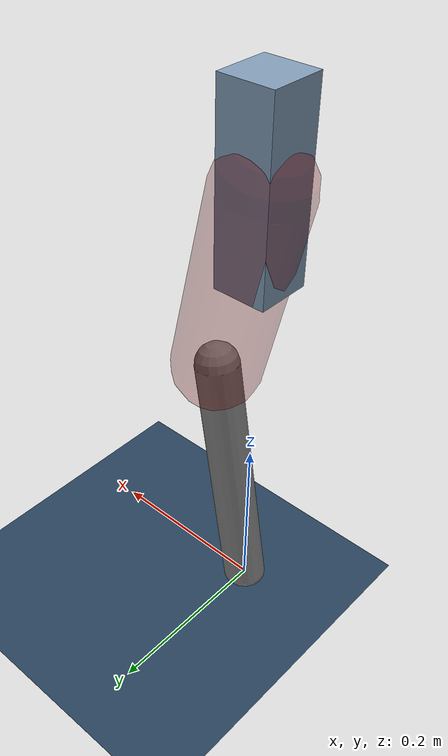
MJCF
<mujoco model="Hopper2D">
	<compiler inertiafromgeom="true" angle="radian" />
	<option timestep="0.001" integrator="implicit" cone="elliptic" solver="Newton" tolerance="1e-10" />

	<default>
		<geom contype="1" conaffinity="1" condim="3" friction="2 0.005 0.0001" solref="0.005 1" />
		<joint limited="true" damping="0.1" />
	</default>

	<asset>
		<texture name="skybox" type="skybox" builtin="gradient" rgb1=".4 .6 .8" rgb2="0 0 0" width="800" height="800" />
		<texture name="grid" type="2d" builtin="checker" rgb1=".1 .2 .3" rgb2=".2 .3 .4" width="300" height="300" mark="edge" markrgb=".2 .3 .4" />
		<material name="ground" texture="grid" texrepeat="1 1" texuniform="true" reflectance="0.1" />
		<material name="leg" rgba="0.5 0.6 0.7 1" />
	</asset>

	<worldbody>

		<geom name="floor" type="plane" size="5 5 0.25" material="ground" />

		<light directional="false" diffuse="0.8 0.8 0.8" specular="0.3 0.3 0.3" pos="0 0 2" dir="0 0 -1" />
		<light mode="targetbodycom" target="base" directional="false" diffuse="0.8 0.8 0.8" specular="0.3 0.3 0.3" pos="0 0 2" dir="0 0 -1" />

		<camera name="fixed" pos="0 -2 1" xyaxes="1 0 0 0 0 1" />
		<camera name="tracking" mode="trackcom" pos="0 -3 1" />

		<body name="root" pos="0 0 0.5143255165481794">
			<joint name="slide_x" type="slide" axis="1 0 0" range="-100 100" />
			<joint name="slide_z" type="slide" axis="0 0 1" range="0 10" />

			<body name="base" pos="0 0 0">
				<geom name="torso" type="box" size="0.03 0.03 0.1" mass="1.9329999999999998" material="leg" />

				<body name="link1" pos="0 0 0" euler="0 1.341869900751621 0">
					<joint type="hinge" axis="0 -1 0" pos="0 0 0" name="hinge1" limited="true" range="-3.14 3.14" stiffness="0" damping="0.1" />
					<geom name="thigh" type="capsule" fromto="0 0 0 0.22175911338109536 0 0" size="0.05" rgba="0.5 0 0 0.3" mass="0.7840977834527384" />

					<body name="link2" pos="0.22175911338109536 0 0" euler="0 0.3960276735283555 0">
						<joint type="hinge" axis="0 -1 0" pos="0 0 0" name="hinge2" limited="true" range="-3.14 3.14" stiffness="0" damping="0.1" />
						<geom name="shank" type="capsule" fromto="0 0 0 0.30256640316708405 0 0" size="0.025" mass="0.4855531225336672" />

					</body>
				</body>
			</body>
		</body>
	</worldbody>

	<actuator>
		<motor name="torque1" joint="hinge1" ctrlrange="-37.623228981595204 37.623228981595204" ctrllimited="true" gear="1" />
		<motor name="torque2" joint="hinge2" ctrlrange="-45.35321972496336 45.35321972496336" ctrllimited="true" gear="1" />
	</actuator>
</mujoco>
